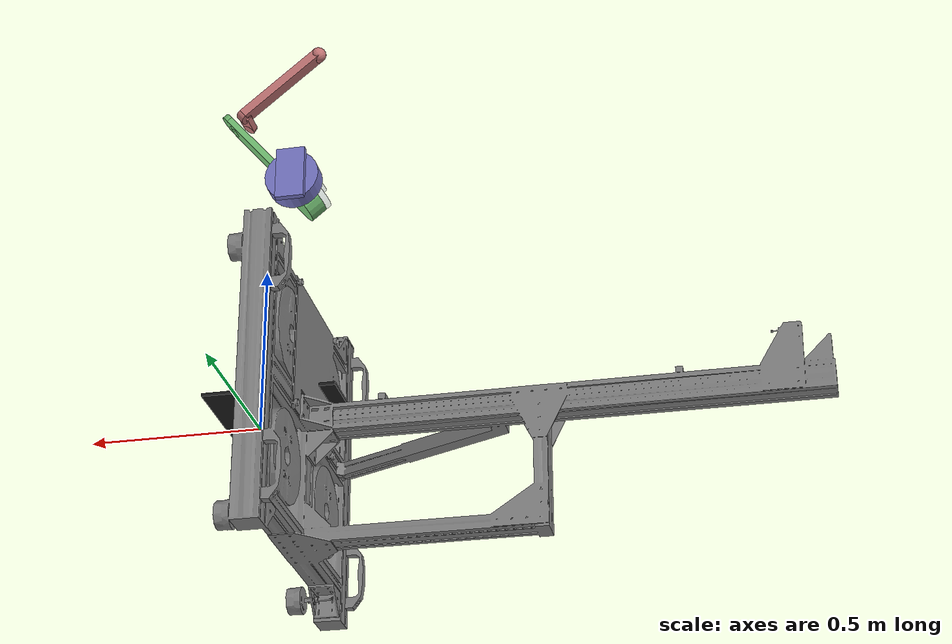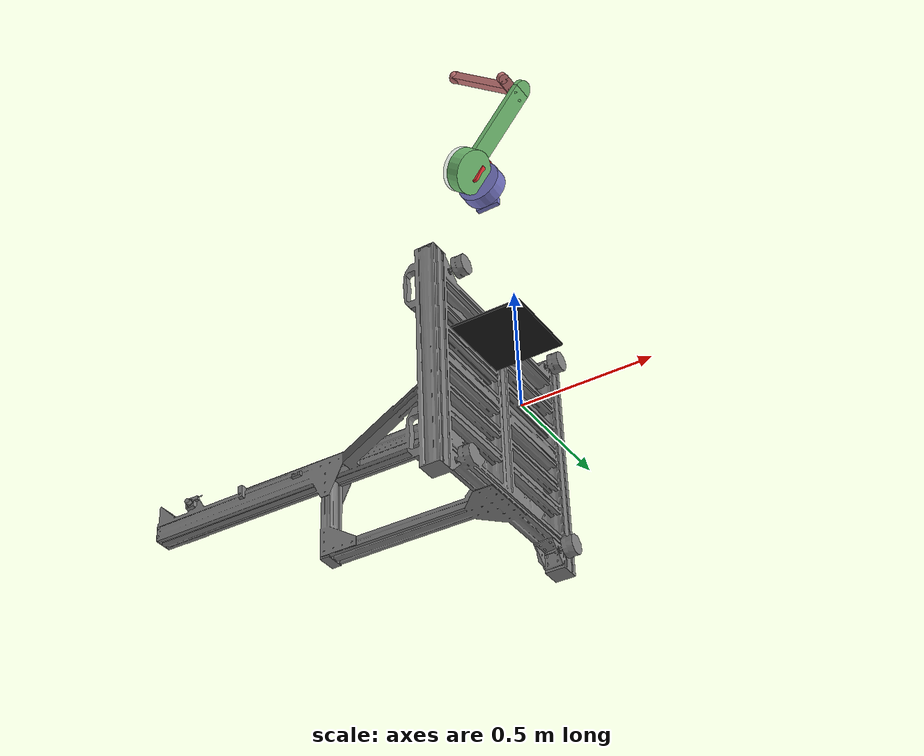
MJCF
<mujoco model="leg_two">
    <default>
        <geom contype="1" conaffinity="0" solref="0.005 1.0"/>

        <default class="part">
        <geom group="1" contype="2" conaffinity="1"/>
        </default>

        <default class="mockup">
        <geom group="1" contype="4"/>
        </default>

    </default>

    <asset>
        <material name="pelvis" rgba="0.45 0.45 0.75 1.0" />
        <material name="thigh" rgba="0.45 0.75 0.45 1.0" />
        <material name="shin" rgba="0.75 0.45 0.45 1.0" />
        <material name="foot" rgba="0.86 0.68 0.68 1.0" />
        <material name="loop1" rgba="0.52 0.52 0.65 1.0" />
        <material name="loop2" rgba="1.0 0.75 0.0 1.0" />
        <mesh name="cart" file="cart.STL"/>
        <mesh name="base" file="base.stl"/>
    </asset>

    <worldbody>
        <body name="base" pos="0.0 0.0 0.0">
            <!-- стойка робота -->
            <geom type="mesh" mesh="base" euler="0.0 0.0 90.0"  class="mockup"/>
            <!-- резиновый коврик -->
            <geom type="box" size="0.2 0.15 0.005" pos="0.0 -0.2 0.15" density="7700.0" rgba="0.1 0.1 0.1 1.0"/>

            <body name="cart" pos="0.0325 -0.14 1.0">
                <!-- каретка; к ней подсоединена вся нога -->
                <geom type="mesh" mesh="cart" euler="0.0 -180.0 -90.0" mass="0.2" rgba="0.9 0.2 0.2 1.0" class="mockup"/>
                <joint name="rail" type="slide" range="-0.5 0.5"/>

                <body name="pelvis" pos="-0.05 0.01 -0.085">
                    <!-- кронштейн для крепления первого В1, который приводит голень -->
                    <geom type="box" size="0.045 0.01 0.085" density="750" material="pelvis" class="part"/>
                    <!-- B1 с диаметром .85 -->
                    <geom type="cylinder" size="0.085 0.0275" pos="0.0 -0.0375 0.0" zaxis="0 1 0"
                        material="pelvis" mass="1.74" class="part"/>

                    <body name="thigh" pos="0.0 -0.1325 0.0" euler="180 50 -90">
                    <!-- 60ref было вместо 50 -->
                        <!-- тело звена; pos = box + 2cylinder + cylinder-->
                        <!-- фланец ко второму В1 -->
                        <geom type="cylinder" size="0.04 0.01" pos = "0 0 -0.0575" zaxis = "0 0 1"  rgba="0.45 0.45 0.75 0.25" class="part"/>
                        <!-- вторая часть фланеца к ротору второго В1 -->
                        <geom type="cylinder" size="0.085 0.01" pos = "0 0 -0.0375" zaxis = "0 0 1"  rgba="0.45 0.45 0.75 .25" class="part"/>
                        <geom type="cylinder" size="0.085 0.0275" pos="0.0 0.0 0.0" zaxis="0 0 1" mass="1.74" material="thigh" class="part"/>
                        <geom type="box" size="0.04 0.185 0.01" pos="0.0 0.185 0.0" density="2000" material="thigh" class="part"/>
                        <geom type="cylinder" size="0.04 0.01" pos="0 0.370 0" material="thigh" class="part"/>
                        <joint name="hip" type="hinge" ref="50" damping="0.256"/>

                        <body name="shin" pos="0.0 0.370 -0.0475" euler="-90 0 0">
                        <!-- 115 ref было вместо 90-->
                            <geom type="box" size="0.02 0.1565 0.015" pos="0.0 0.1565 0.0" density="2000" material="shin" class="part"/>
                            <geom type="cylinder" size="0.02 0.015" pos="0 0 0" material="shin" class="part"/>
                            <geom type="cylinder" size="0.02 0.015" pos="0 .313 0" material="shin" class="part"/>
                            <site name='tip' size = "0.025" pos = "0 .313 0" material ="shin"/>
                            <joint name="knee" type="hinge" ref="-90" damping="0.256"/>
                            <body pos="0 0 0" euler = "110 0 0">
                                <geom type="box" size="0.034 0.02 0.01" pos="-.034 0 0" material = "shin"  density="2000" class = "part"/>
                                <geom type="cylinder" size=".02 .01" pos="-0.068 0 0" density="2000" material ="shin"/>
                            </body>

                            <!-- на ступню -->

                        </body>

                        <!-- на ступню -->

                    </body>

                </body>

            </body>

        </body>

    </worldbody>

   <actuator>
		<motor name="torque_hip" joint="hip"  gear="1" ctrllimited="true" ctrlrange="-100 100"/>
		<position name ="pos_servo_hip" joint="hip" kp="0"/>
		<velocity name ="vel_servo_hip" joint="hip" kv="0"/>

		<motor name="torque_knee" joint="knee"  gear="1" ctrllimited="true" ctrlrange="-100 100"/>
		<position name ="pos_servo_knee" joint="knee" kp="0"/>
		<velocity name ="vel_servo_knee" joint="knee" kv="0"/>

    </actuator>

</mujoco>
